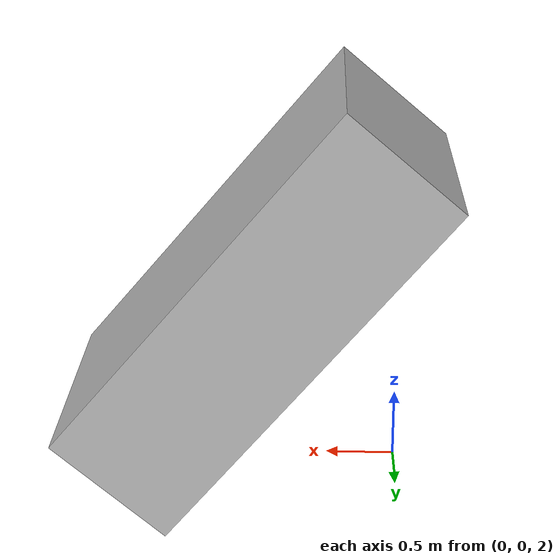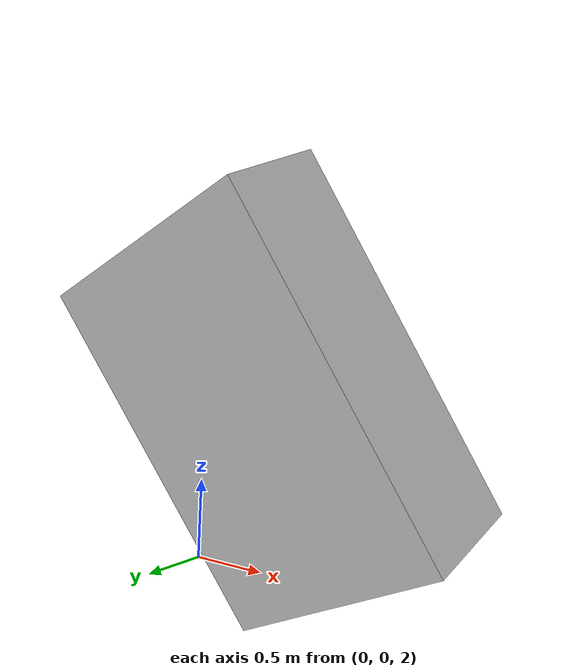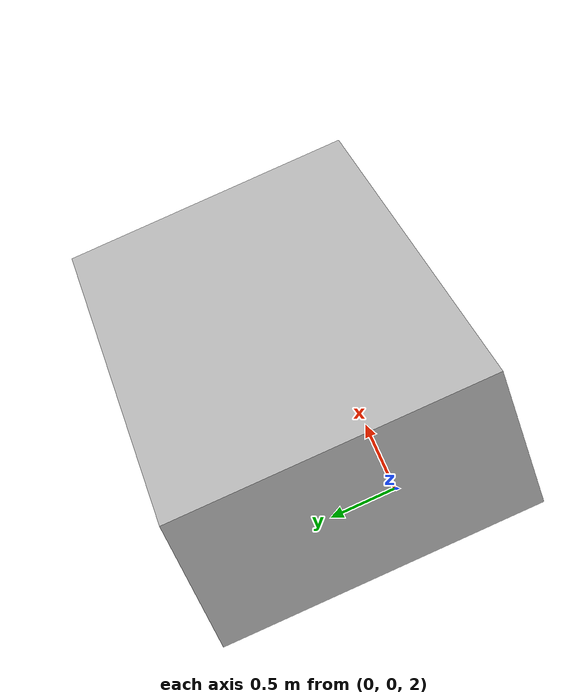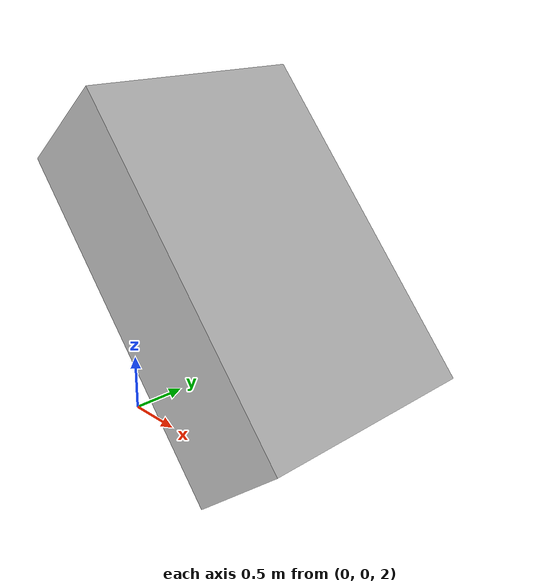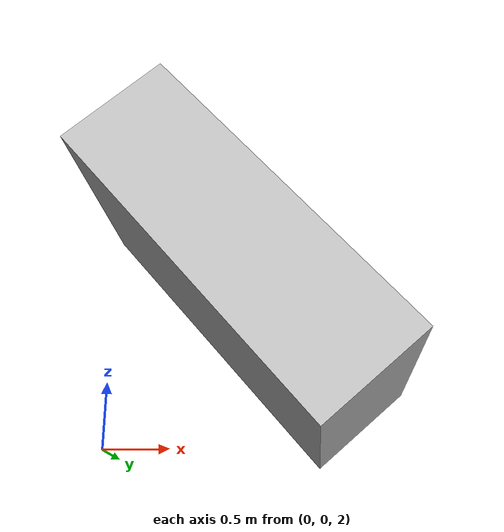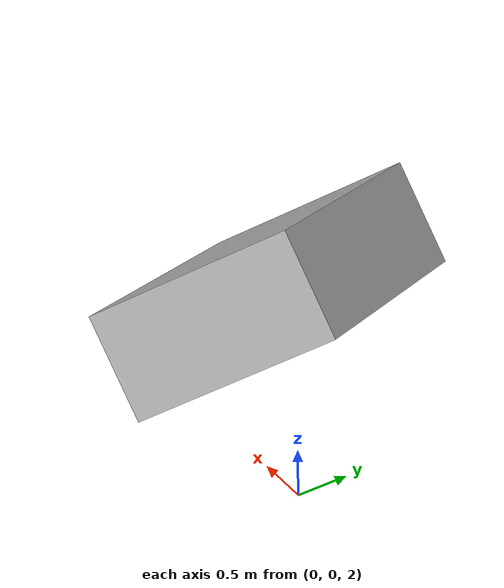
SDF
<?xml version='1.0'?>
<sdf version='1.6'>
  <model name='test_static_model'>
    <allow_auto_disable>1</allow_auto_disable>
    <static>1</static>
    <self_collide>0</self_collide>
    <pose frame=''>0 0 0 0 0 0</pose>

    <link name='body'>
        <pose frame=''>1 0 3.5 0 0 0</pose>
        <self_collide>0</self_collide>
        <kinematic>0</kinematic>

        <visual name='body_visual'>
            <geometry>
                <box>
                    <size>1 2 3</size>
                </box>
            </geometry>
            <pose frame=''>0 0.4 0 0 -0.7 0</pose>
            <cast_shadows>1</cast_shadows>
            <transparency>0</transparency>
        </visual>

        <collision name='body_collision'>
            <pose>0.6 1.2 0.05 0 0 0</pose>
            <geometry>
                <cylinder>
                    <radius>2.4</radius>
                    <length>5.6</length>
                </cylinder>
            </geometry>
            <surface>
                <friction>
                    <ode>
                        <mu>1</mu>
                        <mu2>0.5</mu2>
                    </ode>
                    <torsional>
                        <ode>
                            <slip>0.5</slip>
                        </ode>
                    </torsional>
                </friction>
                <contact>
                    <ode>
                        <soft_cfm>0</soft_cfm>
                    </ode>
                </contact>
            </surface>
            <max_contacts>10</max_contacts>
        </collision>
        </link>
  </model>
</sdf>
